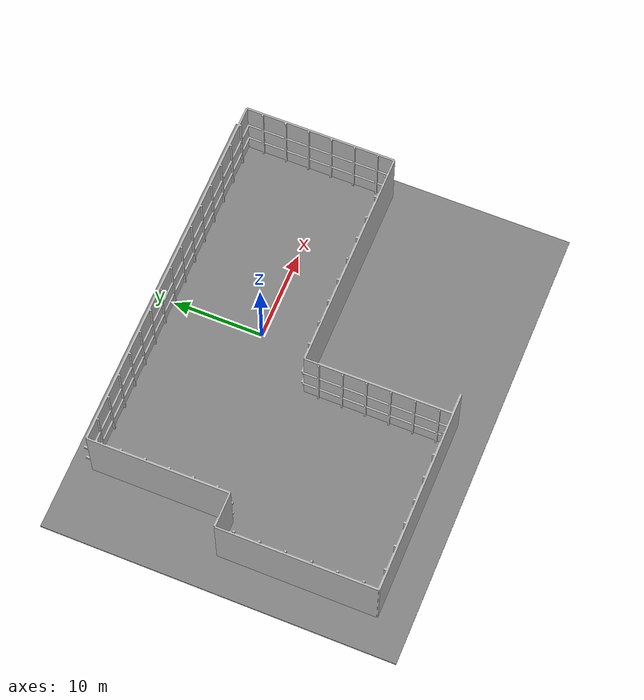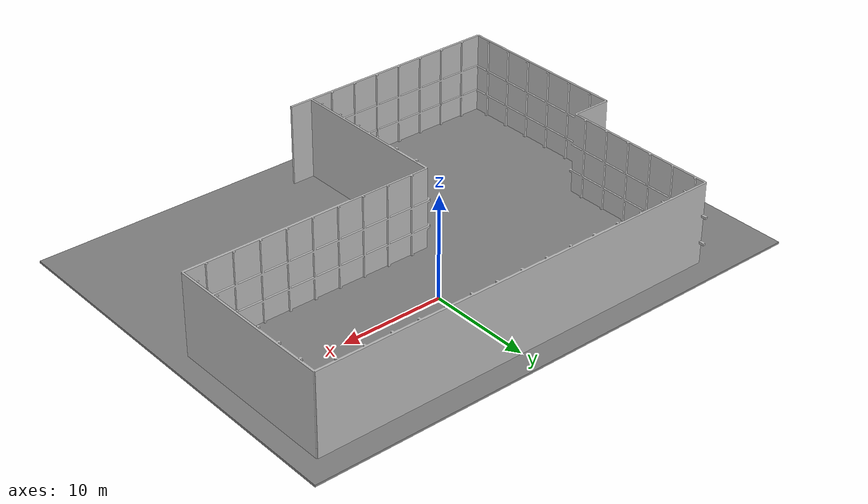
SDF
<?xml version="1.0" ?>

<sdf version="1.6">
  <world name="cranavgym_drone_sim">
    <physics name="5ms" type="ignored">
      <max_step_size>0.006</max_step_size>
      <real_time_factor>0</real_time_factor>
    </physics>

    <plugin name='gz::sim::systems::Physics' filename='gz-sim-physics-system'/>
    <plugin name='gz::sim::systems::SceneBroadcaster' filename='gz-sim-scene-broadcaster-system'/>
    <plugin name='gz::sim::systems::UserCommands' filename='gz-sim-user-commands-system'/>
    <plugin name='gz::sim::systems::Sensors' filename='gz-sim-sensors-system'>
      <render_engine>ogre2</render_engine>
    </plugin>

    <gravity>0 0 -9.8000000000000007</gravity>
    <magnetic_field>5.5644999999999998e-06 2.2875799999999999e-05 -4.2388400000000002e-05</magnetic_field>
    <atmosphere type='adiabatic'/>

    <scene>
      <ambient>0.400000006 0.400000006 0.400000006 1</ambient>
      <background>0.699999988 0.699999988 0.699999988 1</background>
      <shadows>true</shadows>
    </scene>

    <light name='sun' type='directional'>
      <pose>0 0 1000 0 0 0</pose>
      <cast_shadows>true</cast_shadows>
      <intensity>1</intensity>
      <direction>-0.5 0.10000000000000001 -0.90000000000000002</direction>
      <diffuse>0.800000012 0.800000012 0.800000012 1</diffuse>
      <specular>0.200000003 0.200000003 0.200000003 1</specular>
      <attenuation>
        <range>1000</range>
        <linear>0.0099999997764825821</linear>
        <constant>0.89999997615814209</constant>
        <quadratic>0.0010000000474974513</quadratic>
      </attenuation>
      <spot>
        <inner_angle>0</inner_angle>
        <outer_angle>0</outer_angle>
        <falloff>0</falloff>
      </spot>
    </light>

    <include>
      <uri>model://flight_arena</uri>
      <pose>0 0 0 0 0 0</pose>
    </include>

  </world>
</sdf>

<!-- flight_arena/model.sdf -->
<sdf version="1.6">
  <model name="flight_arena">
    <static>true</static>
    <link name="link">
      <visual name="vis">
        <geometry>
          <mesh><uri>Flight_arena_3.dae</uri></mesh>
        </geometry>
      </visual>
      <collision name="coll">
        <geometry>
          <mesh><uri>Flight_arena_3.dae</uri></mesh>
        </geometry>
      </collision>
    </link>
  </model>
</sdf>
